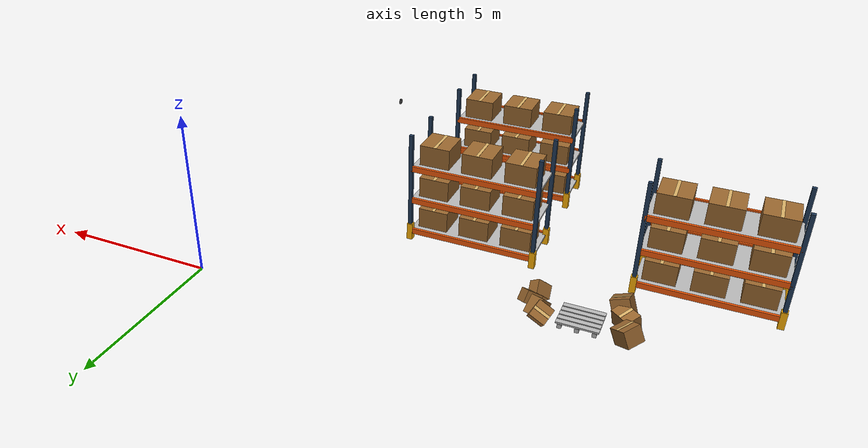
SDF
<sdf version="1.9">
 <world name="factory">
  <model name="rack_-1_0_0">
   <static>true</static>
   <pose>-7 -9 0 0 0 0</pose>
   <link name="body">
    <visual name="post0_visual">
     <pose>-2 -0.75 1.8 0 0 0</pose>
     <geometry><box><size>0.12 0.12 3.6</size></box></geometry>
     <material><ambient>.12 .22 .34 1</ambient><diffuse>.12 .22 .34 1</diffuse></material>
    </visual>
    <collision name="post0_collision">
     <pose>-2 -0.75 1.8 0 0 0</pose>
     <geometry><box><size>0.12 0.12 3.6</size></box></geometry>
    </collision>
    <visual name="guard0_visual">
     <pose>-2 -0.75 0.275 0 0 0</pose>
     <geometry><box><size>0.18 0.18 0.55</size></box></geometry>
     <material><ambient>1 .7 .02 1</ambient><diffuse>1 .7 .02 1</diffuse></material>
    </visual>
    <collision name="guard0_collision">
     <pose>-2 -0.75 0.275 0 0 0</pose>
     <geometry><box><size>0.18 0.18 0.55</size></box></geometry>
    </collision>
    <visual name="post1_visual">
     <pose>2 -0.75 1.8 0 0 0</pose>
     <geometry><box><size>0.12 0.12 3.6</size></box></geometry>
     <material><ambient>.12 .22 .34 1</ambient><diffuse>.12 .22 .34 1</diffuse></material>
    </visual>
    <collision name="post1_collision">
     <pose>2 -0.75 1.8 0 0 0</pose>
     <geometry><box><size>0.12 0.12 3.6</size></box></geometry>
    </collision>
    <visual name="guard1_visual">
     <pose>2 -0.75 0.275 0 0 0</pose>
     <geometry><box><size>0.18 0.18 0.55</size></box></geometry>
     <material><ambient>1 .7 .02 1</ambient><diffuse>1 .7 .02 1</diffuse></material>
    </visual>
    <collision name="guard1_collision">
     <pose>2 -0.75 0.275 0 0 0</pose>
     <geometry><box><size>0.18 0.18 0.55</size></box></geometry>
    </collision>
    <visual name="post2_visual">
     <pose>-2 0.75 1.8 0 0 0</pose>
     <geometry><box><size>0.12 0.12 3.6</size></box></geometry>
     <material><ambient>.12 .22 .34 1</ambient><diffuse>.12 .22 .34 1</diffuse></material>
    </visual>
    <collision name="post2_collision">
     <pose>-2 0.75 1.8 0 0 0</pose>
     <geometry><box><size>0.12 0.12 3.6</size></box></geometry>
    </collision>
    <visual name="guard2_visual">
     <pose>-2 0.75 0.275 0 0 0</pose>
     <geometry><box><size>0.18 0.18 0.55</size></box></geometry>
     <material><ambient>1 .7 .02 1</ambient><diffuse>1 .7 .02 1</diffuse></material>
    </visual>
    <collision name="guard2_collision">
     <pose>-2 0.75 0.275 0 0 0</pose>
     <geometry><box><size>0.18 0.18 0.55</size></box></geometry>
    </collision>
    <visual name="post3_visual">
     <pose>2 0.75 1.8 0 0 0</pose>
     <geometry><box><size>0.12 0.12 3.6</size></box></geometry>
     <material><ambient>.12 .22 .34 1</ambient><diffuse>.12 .22 .34 1</diffuse></material>
    </visual>
    <collision name="post3_collision">
     <pose>2 0.75 1.8 0 0 0</pose>
     <geometry><box><size>0.12 0.12 3.6</size></box></geometry>
    </collision>
    <visual name="guard3_visual">
     <pose>2 0.75 0.275 0 0 0</pose>
     <geometry><box><size>0.18 0.18 0.55</size></box></geometry>
     <material><ambient>1 .7 .02 1</ambient><diffuse>1 .7 .02 1</diffuse></material>
    </visual>
    <collision name="guard3_collision">
     <pose>2 0.75 0.275 0 0 0</pose>
     <geometry><box><size>0.18 0.18 0.55</size></box></geometry>
    </collision>
    <visual name="shelf0_visual">
     <pose>0 0 0.3 0 0 0</pose>
     <geometry><mesh><uri>model://factory_scene_assets/meshes/wood_010.dae</uri></mesh></geometry>
    </visual>
    <collision name="shelf0_collision">
     <pose>0 0 0.3 0 0 0</pose>
     <geometry><box><size>4 1.5 0.08</size></box></geometry>
    </collision>
    <visual name="beam0_0_visual">
     <pose>0 -0.77 0.3 0 0 0</pose>
     <geometry><box><size>4 0.08 0.18</size></box></geometry>
     <material><ambient>.95 .35 .035 1</ambient><diffuse>.95 .35 .035 1</diffuse></material>
    </visual>
    <collision name="beam0_0_collision">
     <pose>0 -0.77 0.3 0 0 0</pose>
     <geometry><box><size>4 0.08 0.18</size></box></geometry>
    </collision>
    <visual name="beam0_1_visual">
     <pose>0 0.77 0.3 0 0 0</pose>
     <geometry><box><size>4 0.08 0.18</size></box></geometry>
     <material><ambient>.95 .35 .035 1</ambient><diffuse>.95 .35 .035 1</diffuse></material>
    </visual>
    <collision name="beam0_1_collision">
     <pose>0 0.77 0.3 0 0 0</pose>
     <geometry><box><size>4 0.08 0.18</size></box></geometry>
    </collision>
    <visual name="cargo0_0_visual">
     <pose>-1.35 0 0.665 0 0 0</pose>
     <geometry><box><size>0.95 1 0.65</size></box></geometry>
     <material><ambient>.60 .40 .18 1</ambient><diffuse>.60 .40 .18 1</diffuse></material>
    </visual>
    <collision name="cargo0_0_collision">
     <pose>-1.35 0 0.665 0 0 0</pose>
     <geometry><box><size>0.95 1 0.65</size></box></geometry>
    </collision>
    <visual name="cargo0_0_tape_visual">
     <pose>-1.35 0 0.993 0 0 0</pose>
     <geometry><box><size>0.09 1 0.006</size></box></geometry>
     <material><ambient>.85 .69 .4 1</ambient><diffuse>.85 .69 .4 1</diffuse></material>
    </visual>
    <visual name="cargo0_1_visual">
     <pose>0 0 0.665 0 0 0</pose>
     <geometry><box><size>0.95 1 0.65</size></box></geometry>
     <material><ambient>.60 .40 .18 1</ambient><diffuse>.60 .40 .18 1</diffuse></material>
    </visual>
    <collision name="cargo0_1_collision">
     <pose>0 0 0.665 0 0 0</pose>
     <geometry><box><size>0.95 1 0.65</size></box></geometry>
    </collision>
    <visual name="cargo0_1_tape_visual">
     <pose>0 0 0.993 0 0 0</pose>
     <geometry><box><size>0.09 1 0.006</size></box></geometry>
     <material><ambient>.85 .69 .4 1</ambient><diffuse>.85 .69 .4 1</diffuse></material>
    </visual>
    <visual name="cargo0_2_visual">
     <pose>1.35 0 0.665 0 0 0</pose>
     <geometry><box><size>0.95 1 0.65</size></box></geometry>
     <material><ambient>.60 .40 .18 1</ambient><diffuse>.60 .40 .18 1</diffuse></material>
    </visual>
    <collision name="cargo0_2_collision">
     <pose>1.35 0 0.665 0 0 0</pose>
     <geometry><box><size>0.95 1 0.65</size></box></geometry>
    </collision>
    <visual name="cargo0_2_tape_visual">
     <pose>1.35 0 0.993 0 0 0</pose>
     <geometry><box><size>0.09 1 0.006</size></box></geometry>
     <material><ambient>.85 .69 .4 1</ambient><diffuse>.85 .69 .4 1</diffuse></material>
    </visual>
    <visual name="shelf1_visual">
     <pose>0 0 1.4 0 0 0</pose>
     <geometry><mesh><uri>model://factory_scene_assets/meshes/wood_010.dae</uri></mesh></geometry>
    </visual>
    <collision name="shelf1_collision">
     <pose>0 0 1.4 0 0 0</pose>
     <geometry><box><size>4 1.5 0.08</size></box></geometry>
    </collision>
    <visual name="beam1_0_visual">
     <pose>0 -0.77 1.4 0 0 0</pose>
     <geometry><box><size>4 0.08 0.18</size></box></geometry>
     <material><ambient>.95 .35 .035 1</ambient><diffuse>.95 .35 .035 1</diffuse></material>
    </visual>
    <collision name="beam1_0_collision">
     <pose>0 -0.77 1.4 0 0 0</pose>
     <geometry><box><size>4 0.08 0.18</size></box></geometry>
    </collision>
    <visual name="beam1_1_visual">
     <pose>0 0.77 1.4 0 0 0</pose>
     <geometry><box><size>4 0.08 0.18</size></box></geometry>
     <material><ambient>.95 .35 .035 1</ambient><diffuse>.95 .35 .035 1</diffuse></material>
    </visual>
    <collision name="beam1_1_collision">
     <pose>0 0.77 1.4 0 0 0</pose>
     <geometry><box><size>4 0.08 0.18</size></box></geometry>
    </collision>
    <visual name="cargo1_0_visual">
     <pose>-1.35 0 1.765 0 0 0</pose>
     <geometry><box><size>0.95 1 0.65</size></box></geometry>
     <material><ambient>.60 .40 .18 1</ambient><diffuse>.60 .40 .18 1</diffuse></material>
    </visual>
    <collision name="cargo1_0_collision">
     <pose>-1.35 0 1.765 0 0 0</pose>
     <geometry><box><size>0.95 1 0.65</size></box></geometry>
    </collision>
    <visual name="cargo1_0_tape_visual">
     <pose>-1.35 0 2.093 0 0 0</pose>
     <geometry><box><size>0.09 1 0.006</size></box></geometry>
     <material><ambient>.85 .69 .4 1</ambient><diffuse>.85 .69 .4 1</diffuse></material>
    </visual>
    <visual name="cargo1_1_visual">
     <pose>0 0 1.765 0 0 0</pose>
     <geometry><box><size>0.95 1 0.65</size></box></geometry>
     <material><ambient>.60 .40 .18 1</ambient><diffuse>.60 .40 .18 1</diffuse></material>
    </visual>
    <collision name="cargo1_1_collision">
     <pose>0 0 1.765 0 0 0</pose>
     <geometry><box><size>0.95 1 0.65</size></box></geometry>
    </collision>
    <visual name="cargo1_1_tape_visual">
     <pose>0 0 2.093 0 0 0</pose>
     <geometry><box><size>0.09 1 0.006</size></box></geometry>
     <material><ambient>.85 .69 .4 1</ambient><diffuse>.85 .69 .4 1</diffuse></material>
    </visual>
    <visual name="cargo1_2_visual">
     <pose>1.35 0 1.765 0 0 0</pose>
     <geometry><box><size>0.95 1 0.65</size></box></geometry>
     <material><ambient>.60 .40 .18 1</ambient><diffuse>.60 .40 .18 1</diffuse></material>
    </visual>
    <collision name="cargo1_2_collision">
     <pose>1.35 0 1.765 0 0 0</pose>
     <geometry><box><size>0.95 1 0.65</size></box></geometry>
    </collision>
    <visual name="cargo1_2_tape_visual">
     <pose>1.35 0 2.093 0 0 0</pose>
     <geometry><box><size>0.09 1 0.006</size></box></geometry>
     <material><ambient>.85 .69 .4 1</ambient><diffuse>.85 .69 .4 1</diffuse></material>
    </visual>
    <visual name="shelf2_visual">
     <pose>0 0 2.5 0 0 0</pose>
     <geometry><mesh><uri>model://factory_scene_assets/meshes/wood_010.dae</uri></mesh></geometry>
    </visual>
    <collision name="shelf2_collision">
     <pose>0 0 2.5 0 0 0</pose>
     <geometry><box><size>4 1.5 0.08</size></box></geometry>
    </collision>
    <visual name="beam2_0_visual">
     <pose>0 -0.77 2.5 0 0 0</pose>
     <geometry><box><size>4 0.08 0.18</size></box></geometry>
     <material><ambient>.95 .35 .035 1</ambient><diffuse>.95 .35 .035 1</diffuse></material>
    </visual>
    <collision name="beam2_0_collision">
     <pose>0 -0.77 2.5 0 0 0</pose>
     <geometry><box><size>4 0.08 0.18</size></box></geometry>
    </collision>
    <visual name="beam2_1_visual">
     <pose>0 0.77 2.5 0 0 0</pose>
     <geometry><box><size>4 0.08 0.18</size></box></geometry>
     <material><ambient>.95 .35 .035 1</ambient><diffuse>.95 .35 .035 1</diffuse></material>
    </visual>
    <collision name="beam2_1_collision">
     <pose>0 0.77 2.5 0 0 0</pose>
     <geometry><box><size>4 0.08 0.18</size></box></geometry>
    </collision>
    <visual name="cargo2_0_visual">
     <pose>-1.35 0 2.865 0 0 0</pose>
     <geometry><box><size>0.95 1 0.65</size></box></geometry>
     <material><ambient>.60 .40 .18 1</ambient><diffuse>.60 .40 .18 1</diffuse></material>
    </visual>
    <collision name="cargo2_0_collision">
     <pose>-1.35 0 2.865 0 0 0</pose>
     <geometry><box><size>0.95 1 0.65</size></box></geometry>
    </collision>
    <visual name="cargo2_0_tape_visual">
     <pose>-1.35 0 3.193 0 0 0</pose>
     <geometry><box><size>0.09 1 0.006</size></box></geometry>
     <material><ambient>.85 .69 .4 1</ambient><diffuse>.85 .69 .4 1</diffuse></material>
    </visual>
    <visual name="cargo2_1_visual">
     <pose>0 0 2.865 0 0 0</pose>
     <geometry><box><size>0.95 1 0.65</size></box></geometry>
     <material><ambient>.60 .40 .18 1</ambient><diffuse>.60 .40 .18 1</diffuse></material>
    </visual>
    <collision name="cargo2_1_collision">
     <pose>0 0 2.865 0 0 0</pose>
     <geometry><box><size>0.95 1 0.65</size></box></geometry>
    </collision>
    <visual name="cargo2_1_tape_visual">
     <pose>0 0 3.193 0 0 0</pose>
     <geometry><box><size>0.09 1 0.006</size></box></geometry>
     <material><ambient>.85 .69 .4 1</ambient><diffuse>.85 .69 .4 1</diffuse></material>
    </visual>
    <visual name="cargo2_2_visual">
     <pose>1.35 0 2.865 0 0 0</pose>
     <geometry><box><size>0.95 1 0.65</size></box></geometry>
     <material><ambient>.60 .40 .18 1</ambient><diffuse>.60 .40 .18 1</diffuse></material>
    </visual>
    <collision name="cargo2_2_collision">
     <pose>1.35 0 2.865 0 0 0</pose>
     <geometry><box><size>0.95 1 0.65</size></box></geometry>
    </collision>
    <visual name="cargo2_2_tape_visual">
     <pose>1.35 0 3.193 0 0 0</pose>
     <geometry><box><size>0.09 1 0.006</size></box></geometry>
     <material><ambient>.85 .69 .4 1</ambient><diffuse>.85 .69 .4 1</diffuse></material>
    </visual>
   </link>
  </model>
  <model name="rack_-1_0_1">
   <static>true</static>
   <pose>-7 -5 0 0 0 0</pose>
   <link name="body">
    <visual name="post0_visual">
     <pose>-2 -0.75 1.8 0 0 0</pose>
     <geometry><box><size>0.12 0.12 3.6</size></box></geometry>
     <material><ambient>.12 .22 .34 1</ambient><diffuse>.12 .22 .34 1</diffuse></material>
    </visual>
    <collision name="post0_collision">
     <pose>-2 -0.75 1.8 0 0 0</pose>
     <geometry><box><size>0.12 0.12 3.6</size></box></geometry>
    </collision>
    <visual name="guard0_visual">
     <pose>-2 -0.75 0.275 0 0 0</pose>
     <geometry><box><size>0.18 0.18 0.55</size></box></geometry>
     <material><ambient>1 .7 .02 1</ambient><diffuse>1 .7 .02 1</diffuse></material>
    </visual>
    <collision name="guard0_collision">
     <pose>-2 -0.75 0.275 0 0 0</pose>
     <geometry><box><size>0.18 0.18 0.55</size></box></geometry>
    </collision>
    <visual name="post1_visual">
     <pose>2 -0.75 1.8 0 0 0</pose>
     <geometry><box><size>0.12 0.12 3.6</size></box></geometry>
     <material><ambient>.12 .22 .34 1</ambient><diffuse>.12 .22 .34 1</diffuse></material>
    </visual>
    <collision name="post1_collision">
     <pose>2 -0.75 1.8 0 0 0</pose>
     <geometry><box><size>0.12 0.12 3.6</size></box></geometry>
    </collision>
    <visual name="guard1_visual">
     <pose>2 -0.75 0.275 0 0 0</pose>
     <geometry><box><size>0.18 0.18 0.55</size></box></geometry>
     <material><ambient>1 .7 .02 1</ambient><diffuse>1 .7 .02 1</diffuse></material>
    </visual>
    <collision name="guard1_collision">
     <pose>2 -0.75 0.275 0 0 0</pose>
     <geometry><box><size>0.18 0.18 0.55</size></box></geometry>
    </collision>
    <visual name="post2_visual">
     <pose>-2 0.75 1.8 0 0 0</pose>
     <geometry><box><size>0.12 0.12 3.6</size></box></geometry>
     <material><ambient>.12 .22 .34 1</ambient><diffuse>.12 .22 .34 1</diffuse></material>
    </visual>
    <collision name="post2_collision">
     <pose>-2 0.75 1.8 0 0 0</pose>
     <geometry><box><size>0.12 0.12 3.6</size></box></geometry>
    </collision>
    <visual name="guard2_visual">
     <pose>-2 0.75 0.275 0 0 0</pose>
     <geometry><box><size>0.18 0.18 0.55</size></box></geometry>
     <material><ambient>1 .7 .02 1</ambient><diffuse>1 .7 .02 1</diffuse></material>
    </visual>
    <collision name="guard2_collision">
     <pose>-2 0.75 0.275 0 0 0</pose>
     <geometry><box><size>0.18 0.18 0.55</size></box></geometry>
    </collision>
    <visual name="post3_visual">
     <pose>2 0.75 1.8 0 0 0</pose>
     <geometry><box><size>0.12 0.12 3.6</size></box></geometry>
     <material><ambient>.12 .22 .34 1</ambient><diffuse>.12 .22 .34 1</diffuse></material>
    </visual>
    <collision name="post3_collision">
     <pose>2 0.75 1.8 0 0 0</pose>
     <geometry><box><size>0.12 0.12 3.6</size></box></geometry>
    </collision>
    <visual name="guard3_visual">
     <pose>2 0.75 0.275 0 0 0</pose>
     <geometry><box><size>0.18 0.18 0.55</size></box></geometry>
     <material><ambient>1 .7 .02 1</ambient><diffuse>1 .7 .02 1</diffuse></material>
    </visual>
    <collision name="guard3_collision">
     <pose>2 0.75 0.275 0 0 0</pose>
     <geometry><box><size>0.18 0.18 0.55</size></box></geometry>
    </collision>
    <visual name="shelf0_visual">
     <pose>0 0 0.3 0 0 0</pose>
     <geometry><mesh><uri>model://factory_scene_assets/meshes/wood_010.dae</uri></mesh></geometry>
    </visual>
    <collision name="shelf0_collision">
     <pose>0 0 0.3 0 0 0</pose>
     <geometry><box><size>4 1.5 0.08</size></box></geometry>
    </collision>
    <visual name="beam0_0_visual">
     <pose>0 -0.77 0.3 0 0 0</pose>
     <geometry><box><size>4 0.08 0.18</size></box></geometry>
     <material><ambient>.95 .35 .035 1</ambient><diffuse>.95 .35 .035 1</diffuse></material>
    </visual>
    <collision name="beam0_0_collision">
     <pose>0 -0.77 0.3 0 0 0</pose>
     <geometry><box><size>4 0.08 0.18</size></box></geometry>
    </collision>
    <visual name="beam0_1_visual">
     <pose>0 0.77 0.3 0 0 0</pose>
     <geometry><box><size>4 0.08 0.18</size></box></geometry>
     <material><ambient>.95 .35 .035 1</ambient><diffuse>.95 .35 .035 1</diffuse></material>
    </visual>
    <collision name="beam0_1_collision">
     <pose>0 0.77 0.3 0 0 0</pose>
     <geometry><box><size>4 0.08 0.18</size></box></geometry>
    </collision>
    <visual name="cargo0_0_visual">
     <pose>-1.35 0 0.665 0 0 0</pose>
     <geometry><box><size>0.95 1 0.65</size></box></geometry>
     <material><ambient>.60 .40 .18 1</ambient><diffuse>.60 .40 .18 1</diffuse></material>
    </visual>
    <collision name="cargo0_0_collision">
     <pose>-1.35 0 0.665 0 0 0</pose>
     <geometry><box><size>0.95 1 0.65</size></box></geometry>
    </collision>
    <visual name="cargo0_0_tape_visual">
     <pose>-1.35 0 0.993 0 0 0</pose>
     <geometry><box><size>0.09 1 0.006</size></box></geometry>
     <material><ambient>.85 .69 .4 1</ambient><diffuse>.85 .69 .4 1</diffuse></material>
    </visual>
    <visual name="cargo0_1_visual">
     <pose>0 0 0.665 0 0 0</pose>
     <geometry><box><size>0.95 1 0.65</size></box></geometry>
     <material><ambient>.60 .40 .18 1</ambient><diffuse>.60 .40 .18 1</diffuse></material>
    </visual>
    <collision name="cargo0_1_collision">
     <pose>0 0 0.665 0 0 0</pose>
     <geometry><box><size>0.95 1 0.65</size></box></geometry>
    </collision>
    <visual name="cargo0_1_tape_visual">
     <pose>0 0 0.993 0 0 0</pose>
     <geometry><box><size>0.09 1 0.006</size></box></geometry>
     <material><ambient>.85 .69 .4 1</ambient><diffuse>.85 .69 .4 1</diffuse></material>
    </visual>
    <visual name="cargo0_2_visual">
     <pose>1.35 0 0.665 0 0 0</pose>
     <geometry><box><size>0.95 1 0.65</size></box></geometry>
     <material><ambient>.60 .40 .18 1</ambient><diffuse>.60 .40 .18 1</diffuse></material>
    </visual>
    <collision name="cargo0_2_collision">
     <pose>1.35 0 0.665 0 0 0</pose>
     <geometry><box><size>0.95 1 0.65</size></box></geometry>
    </collision>
    <visual name="cargo0_2_tape_visual">
     <pose>1.35 0 0.993 0 0 0</pose>
     <geometry><box><size>0.09 1 0.006</size></box></geometry>
     <material><ambient>.85 .69 .4 1</ambient><diffuse>.85 .69 .4 1</diffuse></material>
    </visual>
    <visual name="shelf1_visual">
     <pose>0 0 1.4 0 0 0</pose>
     <geometry><mesh><uri>model://factory_scene_assets/meshes/wood_010.dae</uri></mesh></geometry>
    </visual>
    <collision name="shelf1_collision">
     <pose>0 0 1.4 0 0 0</pose>
     <geometry><box><size>4 1.5 0.08</size></box></geometry>
    </collision>
    <visual name="beam1_0_visual">
     <pose>0 -0.77 1.4 0 0 0</pose>
     <geometry><box><size>4 0.08 0.18</size></box></geometry>
     <material><ambient>.95 .35 .035 1</ambient><diffuse>.95 .35 .035 1</diffuse></material>
    </visual>
    <collision name="beam1_0_collision">
     <pose>0 -0.77 1.4 0 0 0</pose>
     <geometry><box><size>4 0.08 0.18</size></box></geometry>
    </collision>
    <visual name="beam1_1_visual">
     <pose>0 0.77 1.4 0 0 0</pose>
     <geometry><box><size>4 0.08 0.18</size></box></geometry>
     <material><ambient>.95 .35 .035 1</ambient><diffuse>.95 .35 .035 1</diffuse></material>
    </visual>
    <collision name="beam1_1_collision">
     <pose>0 0.77 1.4 0 0 0</pose>
     <geometry><box><size>4 0.08 0.18</size></box></geometry>
    </collision>
    <visual name="cargo1_0_visual">
     <pose>-1.35 0 1.765 0 0 0</pose>
     <geometry><box><size>0.95 1 0.65</size></box></geometry>
     <material><ambient>.60 .40 .18 1</ambient><diffuse>.60 .40 .18 1</diffuse></material>
    </visual>
    <collision name="cargo1_0_collision">
     <pose>-1.35 0 1.765 0 0 0</pose>
     <geometry><box><size>0.95 1 0.65</size></box></geometry>
    </collision>
    <visual name="cargo1_0_tape_visual">
     <pose>-1.35 0 2.093 0 0 0</pose>
     <geometry><box><size>0.09 1 0.006</size></box></geometry>
     <material><ambient>.85 .69 .4 1</ambient><diffuse>.85 .69 .4 1</diffuse></material>
    </visual>
    <visual name="cargo1_1_visual">
     <pose>0 0 1.765 0 0 0</pose>
     <geometry><box><size>0.95 1 0.65</size></box></geometry>
     <material><ambient>.60 .40 .18 1</ambient><diffuse>.60 .40 .18 1</diffuse></material>
    </visual>
    <collision name="cargo1_1_collision">
     <pose>0 0 1.765 0 0 0</pose>
     <geometry><box><size>0.95 1 0.65</size></box></geometry>
    </collision>
    <visual name="cargo1_1_tape_visual">
     <pose>0 0 2.093 0 0 0</pose>
     <geometry><box><size>0.09 1 0.006</size></box></geometry>
     <material><ambient>.85 .69 .4 1</ambient><diffuse>.85 .69 .4 1</diffuse></material>
    </visual>
    <visual name="cargo1_2_visual">
     <pose>1.35 0 1.765 0 0 0</pose>
     <geometry><box><size>0.95 1 0.65</size></box></geometry>
     <material><ambient>.60 .40 .18 1</ambient><diffuse>.60 .40 .18 1</diffuse></material>
    </visual>
    <collision name="cargo1_2_collision">
     <pose>1.35 0 1.765 0 0 0</pose>
     <geometry><box><size>0.95 1 0.65</size></box></geometry>
    </collision>
    <visual name="cargo1_2_tape_visual">
     <pose>1.35 0 2.093 0 0 0</pose>
     <geometry><box><size>0.09 1 0.006</size></box></geometry>
     <material><ambient>.85 .69 .4 1</ambient><diffuse>.85 .69 .4 1</diffuse></material>
    </visual>
    <visual name="shelf2_visual">
     <pose>0 0 2.5 0 0 0</pose>
     <geometry><mesh><uri>model://factory_scene_assets/meshes/wood_010.dae</uri></mesh></geometry>
    </visual>
    <collision name="shelf2_collision">
     <pose>0 0 2.5 0 0 0</pose>
     <geometry><box><size>4 1.5 0.08</size></box></geometry>
    </collision>
    <visual name="beam2_0_visual">
     <pose>0 -0.77 2.5 0 0 0</pose>
     <geometry><box><size>4 0.08 0.18</size></box></geometry>
     <material><ambient>.95 .35 .035 1</ambient><diffuse>.95 .35 .035 1</diffuse></material>
    </visual>
    <collision name="beam2_0_collision">
     <pose>0 -0.77 2.5 0 0 0</pose>
     <geometry><box><size>4 0.08 0.18</size></box></geometry>
    </collision>
    <visual name="beam2_1_visual">
     <pose>0 0.77 2.5 0 0 0</pose>
     <geometry><box><size>4 0.08 0.18</size></box></geometry>
     <material><ambient>.95 .35 .035 1</ambient><diffuse>.95 .35 .035 1</diffuse></material>
    </visual>
    <collision name="beam2_1_collision">
     <pose>0 0.77 2.5 0 0 0</pose>
     <geometry><box><size>4 0.08 0.18</size></box></geometry>
    </collision>
    <visual name="cargo2_0_visual">
     <pose>-1.35 0 2.865 0 0 0</pose>
     <geometry><box><size>0.95 1 0.65</size></box></geometry>
     <material><ambient>.60 .40 .18 1</ambient><diffuse>.60 .40 .18 1</diffuse></material>
    </visual>
    <collision name="cargo2_0_collision">
     <pose>-1.35 0 2.865 0 0 0</pose>
     <geometry><box><size>0.95 1 0.65</size></box></geometry>
    </collision>
    <visual name="cargo2_0_tape_visual">
     <pose>-1.35 0 3.193 0 0 0</pose>
     <geometry><box><size>0.09 1 0.006</size></box></geometry>
     <material><ambient>.85 .69 .4 1</ambient><diffuse>.85 .69 .4 1</diffuse></material>
    </visual>
    <visual name="cargo2_1_visual">
     <pose>0 0 2.865 0 0 0</pose>
     <geometry><box><size>0.95 1 0.65</size></box></geometry>
     <material><ambient>.60 .40 .18 1</ambient><diffuse>.60 .40 .18 1</diffuse></material>
    </visual>
    <collision name="cargo2_1_collision">
     <pose>0 0 2.865 0 0 0</pose>
     <geometry><box><size>0.95 1 0.65</size></box></geometry>
    </collision>
    <visual name="cargo2_1_tape_visual">
     <pose>0 0 3.193 0 0 0</pose>
     <geometry><box><size>0.09 1 0.006</size></box></geometry>
     <material><ambient>.85 .69 .4 1</ambient><diffuse>.85 .69 .4 1</diffuse></material>
    </visual>
    <visual name="cargo2_2_visual">
     <pose>1.35 0 2.865 0 0 0</pose>
     <geometry><box><size>0.95 1 0.65</size></box></geometry>
     <material><ambient>.60 .40 .18 1</ambient><diffuse>.60 .40 .18 1</diffuse></material>
    </visual>
    <collision name="cargo2_2_collision">
     <pose>1.35 0 2.865 0 0 0</pose>
     <geometry><box><size>0.95 1 0.65</size></box></geometry>
    </collision>
    <visual name="cargo2_2_tape_visual">
     <pose>1.35 0 3.193 0 0 0</pose>
     <geometry><box><size>0.09 1 0.006</size></box></geometry>
     <material><ambient>.85 .69 .4 1</ambient><diffuse>.85 .69 .4 1</diffuse></material>
    </visual>
   </link>
  </model>
  <model name="rack_-1_1_1">
   <static>true</static>
   <pose>-14 -5 0 0 0 0</pose>
   <link name="body">
    <visual name="post0_visual">
     <pose>-2 -0.75 1.8 0 0 0</pose>
     <geometry><box><size>0.12 0.12 3.6</size></box></geometry>
     <material><ambient>.12 .22 .34 1</ambient><diffuse>.12 .22 .34 1</diffuse></material>
    </visual>
    <collision name="post0_collision">
     <pose>-2 -0.75 1.8 0 0 0</pose>
     <geometry><box><size>0.12 0.12 3.6</size></box></geometry>
    </collision>
    <visual name="guard0_visual">
     <pose>-2 -0.75 0.275 0 0 0</pose>
     <geometry><box><size>0.18 0.18 0.55</size></box></geometry>
     <material><ambient>1 .7 .02 1</ambient><diffuse>1 .7 .02 1</diffuse></material>
    </visual>
    <collision name="guard0_collision">
     <pose>-2 -0.75 0.275 0 0 0</pose>
     <geometry><box><size>0.18 0.18 0.55</size></box></geometry>
    </collision>
    <visual name="post1_visual">
     <pose>2 -0.75 1.8 0 0 0</pose>
     <geometry><box><size>0.12 0.12 3.6</size></box></geometry>
     <material><ambient>.12 .22 .34 1</ambient><diffuse>.12 .22 .34 1</diffuse></material>
    </visual>
    <collision name="post1_collision">
     <pose>2 -0.75 1.8 0 0 0</pose>
     <geometry><box><size>0.12 0.12 3.6</size></box></geometry>
    </collision>
    <visual name="guard1_visual">
     <pose>2 -0.75 0.275 0 0 0</pose>
     <geometry><box><size>0.18 0.18 0.55</size></box></geometry>
     <material><ambient>1 .7 .02 1</ambient><diffuse>1 .7 .02 1</diffuse></material>
    </visual>
    <collision name="guard1_collision">
     <pose>2 -0.75 0.275 0 0 0</pose>
     <geometry><box><size>0.18 0.18 0.55</size></box></geometry>
    </collision>
    <visual name="post2_visual">
     <pose>-2 0.75 1.8 0 0 0</pose>
     <geometry><box><size>0.12 0.12 3.6</size></box></geometry>
     <material><ambient>.12 .22 .34 1</ambient><diffuse>.12 .22 .34 1</diffuse></material>
    </visual>
    <collision name="post2_collision">
     <pose>-2 0.75 1.8 0 0 0</pose>
     <geometry><box><size>0.12 0.12 3.6</size></box></geometry>
    </collision>
    <visual name="guard2_visual">
     <pose>-2 0.75 0.275 0 0 0</pose>
     <geometry><box><size>0.18 0.18 0.55</size></box></geometry>
     <material><ambient>1 .7 .02 1</ambient><diffuse>1 .7 .02 1</diffuse></material>
    </visual>
    <collision name="guard2_collision">
     <pose>-2 0.75 0.275 0 0 0</pose>
     <geometry><box><size>0.18 0.18 0.55</size></box></geometry>
    </collision>
    <visual name="post3_visual">
     <pose>2 0.75 1.8 0 0 0</pose>
     <geometry><box><size>0.12 0.12 3.6</size></box></geometry>
     <material><ambient>.12 .22 .34 1</ambient><diffuse>.12 .22 .34 1</diffuse></material>
    </visual>
    <collision name="post3_collision">
     <pose>2 0.75 1.8 0 0 0</pose>
     <geometry><box><size>0.12 0.12 3.6</size></box></geometry>
    </collision>
    <visual name="guard3_visual">
     <pose>2 0.75 0.275 0 0 0</pose>
     <geometry><box><size>0.18 0.18 0.55</size></box></geometry>
     <material><ambient>1 .7 .02 1</ambient><diffuse>1 .7 .02 1</diffuse></material>
    </visual>
    <collision name="guard3_collision">
     <pose>2 0.75 0.275 0 0 0</pose>
     <geometry><box><size>0.18 0.18 0.55</size></box></geometry>
    </collision>
    <visual name="shelf0_visual">
     <pose>0 0 0.3 0 0 0</pose>
     <geometry><mesh><uri>model://factory_scene_assets/meshes/wood_010.dae</uri></mesh></geometry>
    </visual>
    <collision name="shelf0_collision">
     <pose>0 0 0.3 0 0 0</pose>
     <geometry><box><size>4 1.5 0.08</size></box></geometry>
    </collision>
    <visual name="beam0_0_visual">
     <pose>0 -0.77 0.3 0 0 0</pose>
     <geometry><box><size>4 0.08 0.18</size></box></geometry>
     <material><ambient>.95 .35 .035 1</ambient><diffuse>.95 .35 .035 1</diffuse></material>
    </visual>
    <collision name="beam0_0_collision">
     <pose>0 -0.77 0.3 0 0 0</pose>
     <geometry><box><size>4 0.08 0.18</size></box></geometry>
    </collision>
    <visual name="beam0_1_visual">
     <pose>0 0.77 0.3 0 0 0</pose>
     <geometry><box><size>4 0.08 0.18</size></box></geometry>
     <material><ambient>.95 .35 .035 1</ambient><diffuse>.95 .35 .035 1</diffuse></material>
    </visual>
    <collision name="beam0_1_collision">
     <pose>0 0.77 0.3 0 0 0</pose>
     <geometry><box><size>4 0.08 0.18</size></box></geometry>
    </collision>
    <visual name="cargo0_0_visual">
     <pose>-1.35 0 0.665 0 0 0</pose>
     <geometry><box><size>0.95 1 0.65</size></box></geometry>
     <material><ambient>.60 .40 .18 1</ambient><diffuse>.60 .40 .18 1</diffuse></material>
    </visual>
    <collision name="cargo0_0_collision">
     <pose>-1.35 0 0.665 0 0 0</pose>
     <geometry><box><size>0.95 1 0.65</size></box></geometry>
    </collision>
    <visual name="cargo0_0_tape_visual">
     <pose>-1.35 0 0.993 0 0 0</pose>
     <geometry><box><size>0.09 1 0.006</size></box></geometry>
     <material><ambient>.85 .69 .4 1</ambient><diffuse>.85 .69 .4 1</diffuse></material>
    </visual>
    <visual name="cargo0_1_visual">
     <pose>0 0 0.665 0 0 0</pose>
     <geometry><box><size>0.95 1 0.65</size></box></geometry>
     <material><ambient>.60 .40 .18 1</ambient><diffuse>.60 .40 .18 1</diffuse></material>
    </visual>
    <collision name="cargo0_1_collision">
     <pose>0 0 0.665 0 0 0</pose>
     <geometry><box><size>0.95 1 0.65</size></box></geometry>
    </collision>
    <visual name="cargo0_1_tape_visual">
     <pose>0 0 0.993 0 0 0</pose>
     <geometry><box><size>0.09 1 0.006</size></box></geometry>
     <material><ambient>.85 .69 .4 1</ambient><diffuse>.85 .69 .4 1</diffuse></material>
    </visual>
    <visual name="cargo0_2_visual">
     <pose>1.35 0 0.665 0 0 0</pose>
     <geometry><box><size>0.95 1 0.65</size></box></geometry>
     <material><ambient>.60 .40 .18 1</ambient><diffuse>.60 .40 .18 1</diffuse></material>
    </visual>
    <collision name="cargo0_2_collision">
     <pose>1.35 0 0.665 0 0 0</pose>
     <geometry><box><size>0.95 1 0.65</size></box></geometry>
    </collision>
    <visual name="cargo0_2_tape_visual">
     <pose>1.35 0 0.993 0 0 0</pose>
     <geometry><box><size>0.09 1 0.006</size></box></geometry>
     <material><ambient>.85 .69 .4 1</ambient><diffuse>.85 .69 .4 1</diffuse></material>
    </visual>
    <visual name="shelf1_visual">
     <pose>0 0 1.4 0 0 0</pose>
     <geometry><mesh><uri>model://factory_scene_assets/meshes/wood_010.dae</uri></mesh></geometry>
    </visual>
    <collision name="shelf1_collision">
     <pose>0 0 1.4 0 0 0</pose>
     <geometry><box><size>4 1.5 0.08</size></box></geometry>
    </collision>
    <visual name="beam1_0_visual">
     <pose>0 -0.77 1.4 0 0 0</pose>
     <geometry><box><size>4 0.08 0.18</size></box></geometry>
     <material><ambient>.95 .35 .035 1</ambient><diffuse>.95 .35 .035 1</diffuse></material>
    </visual>
    <collision name="beam1_0_collision">
     <pose>0 -0.77 1.4 0 0 0</pose>
     <geometry><box><size>4 0.08 0.18</size></box></geometry>
    </collision>
    <visual name="beam1_1_visual">
     <pose>0 0.77 1.4 0 0 0</pose>
     <geometry><box><size>4 0.08 0.18</size></box></geometry>
     <material><ambient>.95 .35 .035 1</ambient><diffuse>.95 .35 .035 1</diffuse></material>
    </visual>
    <collision name="beam1_1_collision">
     <pose>0 0.77 1.4 0 0 0</pose>
     <geometry><box><size>4 0.08 0.18</size></box></geometry>
    </collision>
    <visual name="cargo1_0_visual">
     <pose>-1.35 0 1.765 0 0 0</pose>
     <geometry><box><size>0.95 1 0.65</size></box></geometry>
     <material><ambient>.60 .40 .18 1</ambient><diffuse>.60 .40 .18 1</diffuse></material>
    </visual>
    <collision name="cargo1_0_collision">
     <pose>-1.35 0 1.765 0 0 0</pose>
     <geometry><box><size>0.95 1 0.65</size></box></geometry>
    </collision>
    <visual name="cargo1_0_tape_visual">
     <pose>-1.35 0 2.093 0 0 0</pose>
     <geometry><box><size>0.09 1 0.006</size></box></geometry>
     <material><ambient>.85 .69 .4 1</ambient><diffuse>.85 .69 .4 1</diffuse></material>
    </visual>
    <visual name="cargo1_1_visual">
     <pose>0 0 1.765 0 0 0</pose>
     <geometry><box><size>0.95 1 0.65</size></box></geometry>
     <material><ambient>.60 .40 .18 1</ambient><diffuse>.60 .40 .18 1</diffuse></material>
    </visual>
    <collision name="cargo1_1_collision">
     <pose>0 0 1.765 0 0 0</pose>
     <geometry><box><size>0.95 1 0.65</size></box></geometry>
    </collision>
    <visual name="cargo1_1_tape_visual">
     <pose>0 0 2.093 0 0 0</pose>
     <geometry><box><size>0.09 1 0.006</size></box></geometry>
     <material><ambient>.85 .69 .4 1</ambient><diffuse>.85 .69 .4 1</diffuse></material>
    </visual>
    <visual name="cargo1_2_visual">
     <pose>1.35 0 1.765 0 0 0</pose>
     <geometry><box><size>0.95 1 0.65</size></box></geometry>
     <material><ambient>.60 .40 .18 1</ambient><diffuse>.60 .40 .18 1</diffuse></material>
    </visual>
    <collision name="cargo1_2_collision">
     <pose>1.35 0 1.765 0 0 0</pose>
     <geometry><box><size>0.95 1 0.65</size></box></geometry>
    </collision>
    <visual name="cargo1_2_tape_visual">
     <pose>1.35 0 2.093 0 0 0</pose>
     <geometry><box><size>0.09 1 0.006</size></box></geometry>
     <material><ambient>.85 .69 .4 1</ambient><diffuse>.85 .69 .4 1</diffuse></material>
    </visual>
    <visual name="shelf2_visual">
     <pose>0 0 2.5 0 0 0</pose>
     <geometry><mesh><uri>model://factory_scene_assets/meshes/wood_010.dae</uri></mesh></geometry>
    </visual>
    <collision name="shelf2_collision">
     <pose>0 0 2.5 0 0 0</pose>
     <geometry><box><size>4 1.5 0.08</size></box></geometry>
    </collision>
    <visual name="beam2_0_visual">
     <pose>0 -0.77 2.5 0 0 0</pose>
     <geometry><box><size>4 0.08 0.18</size></box></geometry>
     <material><ambient>.95 .35 .035 1</ambient><diffuse>.95 .35 .035 1</diffuse></material>
    </visual>
    <collision name="beam2_0_collision">
     <pose>0 -0.77 2.5 0 0 0</pose>
     <geometry><box><size>4 0.08 0.18</size></box></geometry>
    </collision>
    <visual name="beam2_1_visual">
     <pose>0 0.77 2.5 0 0 0</pose>
     <geometry><box><size>4 0.08 0.18</size></box></geometry>
     <material><ambient>.95 .35 .035 1</ambient><diffuse>.95 .35 .035 1</diffuse></material>
    </visual>
    <collision name="beam2_1_collision">
     <pose>0 0.77 2.5 0 0 0</pose>
     <geometry><box><size>4 0.08 0.18</size></box></geometry>
    </collision>
    <visual name="cargo2_0_visual">
     <pose>-1.35 0 2.865 0 0 0</pose>
     <geometry><box><size>0.95 1 0.65</size></box></geometry>
     <material><ambient>.60 .40 .18 1</ambient><diffuse>.60 .40 .18 1</diffuse></material>
    </visual>
    <collision name="cargo2_0_collision">
     <pose>-1.35 0 2.865 0 0 0</pose>
     <geometry><box><size>0.95 1 0.65</size></box></geometry>
    </collision>
    <visual name="cargo2_0_tape_visual">
     <pose>-1.35 0 3.193 0 0 0</pose>
     <geometry><box><size>0.09 1 0.006</size></box></geometry>
     <material><ambient>.85 .69 .4 1</ambient><diffuse>.85 .69 .4 1</diffuse></material>
    </visual>
    <visual name="cargo2_1_visual">
     <pose>0 0 2.865 0 0 0</pose>
     <geometry><box><size>0.95 1 0.65</size></box></geometry>
     <material><ambient>.60 .40 .18 1</ambient><diffuse>.60 .40 .18 1</diffuse></material>
    </visual>
    <collision name="cargo2_1_collision">
     <pose>0 0 2.865 0 0 0</pose>
     <geometry><box><size>0.95 1 0.65</size></box></geometry>
    </collision>
    <visual name="cargo2_1_tape_visual">
     <pose>0 0 3.193 0 0 0</pose>
     <geometry><box><size>0.09 1 0.006</size></box></geometry>
     <material><ambient>.85 .69 .4 1</ambient><diffuse>.85 .69 .4 1</diffuse></material>
    </visual>
    <visual name="cargo2_2_visual">
     <pose>1.35 0 2.865 0 0 0</pose>
     <geometry><box><size>0.95 1 0.65</size></box></geometry>
     <material><ambient>.60 .40 .18 1</ambient><diffuse>.60 .40 .18 1</diffuse></material>
    </visual>
    <collision name="cargo2_2_collision">
     <pose>1.35 0 2.865 0 0 0</pose>
     <geometry><box><size>0.95 1 0.65</size></box></geometry>
    </collision>
    <visual name="cargo2_2_tape_visual">
     <pose>1.35 0 3.193 0 0 0</pose>
     <geometry><box><size>0.09 1 0.006</size></box></geometry>
     <material><ambient>.85 .69 .4 1</ambient><diffuse>.85 .69 .4 1</diffuse></material>
    </visual>
   </link>
  </model>
  <model name="fallen_pallet_6">
   <static>true</static>
   <pose>-11 -2.2 0 0 0 0</pose>
   <link name="body">
    <visual name="runner0_visual">
     <pose>-0.48 0 0.065 0 0 0</pose>
     <geometry><mesh><uri>model://factory_scene_assets/meshes/wood_011.dae</uri></mesh></geometry>
    </visual>
    <collision name="runner0_collision">
     <pose>-0.48 0 0.065 0 0 0</pose>
     <geometry><box><size>0.12 1 0.13</size></box></geometry>
    </collision>
    <visual name="runner1_visual">
     <pose>0 0 0.065 0 0 0</pose>
     <geometry><mesh><uri>model://factory_scene_assets/meshes/wood_011.dae</uri></mesh></geometry>
    </visual>
    <collision name="runner1_collision">
     <pose>0 0 0.065 0 0 0</pose>
     <geometry><box><size>0.12 1 0.13</size></box></geometry>
    </collision>
    <visual name="runner2_visual">
     <pose>0.48 0 0.065 0 0 0</pose>
     <geometry><mesh><uri>model://factory_scene_assets/meshes/wood_011.dae</uri></mesh></geometry>
    </visual>
    <collision name="runner2_collision">
     <pose>0.48 0 0.065 0 0 0</pose>
     <geometry><box><size>0.12 1 0.13</size></box></geometry>
    </collision>
    <visual name="plank0_visual">
     <pose>0 -0.4 0.155 0 0 0</pose>
     <geometry><mesh><uri>model://factory_scene_assets/meshes/wood_012.dae</uri></mesh></geometry>
    </visual>
    <collision name="plank0_collision">
     <pose>0 -0.4 0.155 0 0 0</pose>
     <geometry><box><size>1.2 0.16 0.05</size></box></geometry>
    </collision>
    <visual name="plank1_visual">
     <pose>0 -0.2 0.155 0 0 0</pose>
     <geometry><mesh><uri>model://factory_scene_assets/meshes/wood_012.dae</uri></mesh></geometry>
    </visual>
    <collision name="plank1_collision">
     <pose>0 -0.2 0.155 0 0 0</pose>
     <geometry><box><size>1.2 0.16 0.05</size></box></geometry>
    </collision>
    <visual name="plank2_visual">
     <pose>0 0 0.155 0 0 0</pose>
     <geometry><mesh><uri>model://factory_scene_assets/meshes/wood_012.dae</uri></mesh></geometry>
    </visual>
    <collision name="plank2_collision">
     <pose>0 0 0.155 0 0 0</pose>
     <geometry><box><size>1.2 0.16 0.05</size></box></geometry>
    </collision>
    <visual name="plank3_visual">
     <pose>0 0.2 0.155 0 0 0</pose>
     <geometry><mesh><uri>model://factory_scene_assets/meshes/wood_012.dae</uri></mesh></geometry>
    </visual>
    <collision name="plank3_collision">
     <pose>0 0.2 0.155 0 0 0</pose>
     <geometry><box><size>1.2 0.16 0.05</size></box></geometry>
    </collision>
    <visual name="plank4_visual">
     <pose>0 0.4 0.155 0 0 0</pose>
     <geometry><mesh><uri>model://factory_scene_assets/meshes/wood_012.dae</uri></mesh></geometry>
    </visual>
    <collision name="plank4_collision">
     <pose>0 0.4 0.155 0 0 0</pose>
     <geometry><box><size>1.2 0.16 0.05</size></box></geometry>
    </collision>
   </link>
  </model>
  <model name="fallen_box_06_0">
   <static>true</static>
   <pose>-10 -1.646728 0 0 0 0</pose>
   <link name="body">
    <visual name="box_visual">
     <pose>0 0 0.3877036 0.5883478 -0.578885 -1.971571</pose>
     <geometry><box><size>0.513759 0.4938634 0.3517065</size></box></geometry>
     <material><ambient>.60 .40 .18 1</ambient><diffuse>.60 .40 .18 1</diffuse></material>
    </visual>
    <collision name="box_collision">
     <pose>0 0 0.3877036 0.5883478 -0.578885 -1.971571</pose>
     <geometry><box><size>0.513759 0.4938634 0.3517065</size></box></geometry>
    </collision>
    <visual name="box_tape_visual">
     <pose>-0.05964041 0.1136716 0.5122439 0.5883478 -0.578885 -1.971571</pose>
     <geometry><box><size>0.09 0.4938634 0.006</size></box></geometry>
     <material><ambient>.85 .69 .4 1</ambient><diffuse>.85 .69 .4 1</diffuse></material>
    </visual>
   </link>
  </model>
  <model name="fallen_box_06_1">
   <static>true</static>
   <pose>-12 -2.795579 0 0 0 0</pose>
   <link name="body">
    <visual name="box_visual">
     <pose>0 0 0.4387553 0.3837071 -0.2149587 1.48218</pose>
     <geometry><box><size>0.4828831 0.5510796 0.6103634</size></box></geometry>
     <material><ambient>.60 .40 .18 1</ambient><diffuse>.60 .40 .18 1</diffuse></material>
    </visual>
    <collision name="box_collision">
     <pose>0 0 0.4387553 0.3837071 -0.2149587 1.48218</pose>
     <geometry><box><size>0.4828831 0.5510796 0.6103634</size></box></geometry>
    </collision>
    <visual name="box_tape_visual">
     <pose>0.1095236 -0.07092837 0.7179501 0.3837071 -0.2149587 1.48218</pose>
     <geometry><box><size>0.09 0.5510796 0.006</size></box></geometry>
     <material><ambient>.85 .69 .4 1</ambient><diffuse>.85 .69 .4 1</diffuse></material>
    </visual>
   </link>
  </model>
  <model name="fallen_box_06_2">
   <static>true</static>
   <pose>-9.84 -1.878196 0 0 0 0</pose>
   <link name="body">
    <visual name="box_visual">
     <pose>0 0 0.3736986 -0.7149814 -0.1098931 2.66188</pose>
     <geometry><box><size>0.4196873 0.4279692 0.5362513</size></box></geometry>
     <material><ambient>.60 .40 .18 1</ambient><diffuse>.60 .40 .18 1</diffuse></material>
    </visual>
    <collision name="box_collision">
     <pose>0 0 0.3736986 -0.7149814 -0.1098931 2.66188</pose>
     <geometry><box><size>0.4196873 0.4279692 0.5362513</size></box></geometry>
    </collision>
    <visual name="box_tape_visual">
     <pose>-0.06211766 -0.1680503 0.5771921 -0.7149814 -0.1098931 2.66188</pose>
     <geometry><box><size>0.09 0.4279692 0.006</size></box></geometry>
     <material><ambient>.85 .69 .4 1</ambient><diffuse>.85 .69 .4 1</diffuse></material>
    </visual>
   </link>
  </model>
  <model name="fallen_box_06_3">
   <static>true</static>
   <pose>-12.16 -2.42113 0 0 0 0</pose>
   <link name="body">
    <visual name="box_visual">
     <pose>0 0 0.329248 -0.2693807 -0.03453057 -0.6566032</pose>
     <geometry><box><size>0.6606896 0.4604389 0.5119793</size></box></geometry>
     <material><ambient>.60 .40 .18 1</ambient><diffuse>.60 .40 .18 1</diffuse></material>
    </visual>
    <collision name="box_collision">
     <pose>0 0 0.329248 -0.2693807 -0.03453057 -0.6566032</pose>
     <geometry><box><size>0.6606896 0.4604389 0.5119793</size></box></geometry>
    </collision>
    <visual name="box_tape_visual">
     <pose>0.03524782 0.05985549 0.5787486 -0.2693807 -0.03453057 -0.6566032</pose>
     <geometry><box><size>0.09 0.4604389 0.006</size></box></geometry>
     <material><ambient>.85 .69 .4 1</ambient><diffuse>.85 .69 .4 1</diffuse></material>
    </visual>
   </link>
  </model>
  <model name="fallen_box_06_4">
   <static>true</static>
   <pose>-9.68 -2.68283 0 0 0 0</pose>
   <link name="body">
    <visual name="box_visual">
     <pose>0 0 0.3813627 -0.7608038 0.6397951 -2.467055</pose>
     <geometry><box><size>0.5083222 0.3574046 0.4157242</size></box></geometry>
     <material><ambient>.60 .40 .18 1</ambient><diffuse>.60 .40 .18 1</diffuse></material>
    </visual>
    <collision name="box_collision">
     <pose>0 0 0.3813627 -0.7608038 0.6397951 -2.467055</pose>
     <geometry><box><size>0.5083222 0.3574046 0.4157242</size></box></geometry>
    </collision>
    <visual name="box_tape_visual">
     <pose>0.01958972 -0.1704948 0.5038804 -0.7608038 0.6397951 -2.467055</pose>
     <geometry><box><size>0.09 0.3574046 0.006</size></box></geometry>
     <material><ambient>.85 .69 .4 1</ambient><diffuse>.85 .69 .4 1</diffuse></material>
    </visual>
   </link>
  </model>
  <model name="fallen_box_06_5">
   <static>true</static>
   <pose>-12.32 -1.70084 0 0 0 0</pose>
   <link name="body">
    <visual name="box_visual">
     <pose>0 0 0.3935687 0.1836681 -0.3988522 2.407427</pose>
     <geometry><box><size>0.578618 0.54911 0.4966941</size></box></geometry>
     <material><ambient>.60 .40 .18 1</ambient><diffuse>.60 .40 .18 1</diffuse></material>
    </visual>
    <collision name="box_collision">
     <pose>0 0 0.3935687 0.1836681 -0.3988522 2.407427</pose>
     <geometry><box><size>0.578618 0.54911 0.4966941</size></box></geometry>
    </collision>
    <visual name="box_tape_visual">
     <pose>0.1020034 -0.03021826 0.6212911 0.1836681 -0.3988522 2.407427</pose>
     <geometry><box><size>0.09 0.54911 0.006</size></box></geometry>
     <material><ambient>.85 .69 .4 1</ambient><diffuse>.85 .69 .4 1</diffuse></material>
    </visual>
   </link>
  </model>
  <model name="fallen_box_06_6">
   <static>true</static>
   <pose>-9.52 -2.277476 0 0 0 0</pose>
   <link name="body">
    <visual name="box_visual">
     <pose>0 0 0.3430357 -0.5494023 -0.3293203 2.350244</pose>
     <geometry><box><size>0.3788458 0.5002574 0.367242</size></box></geometry>
     <material><ambient>.60 .40 .18 1</ambient><diffuse>.60 .40 .18 1</diffuse></material>
    </visual>
    <collision name="box_collision">
     <pose>0 0 0.3430357 -0.5494023 -0.3293203 2.350244</pose>
     <geometry><box><size>0.3788458 0.5002574 0.367242</size></box></geometry>
    </collision>
    <visual name="box_tape_visual">
     <pose>-0.03313729 -0.1051076 0.4936402 -0.5494023 -0.3293203 2.350244</pose>
     <geometry><box><size>0.09 0.5002574 0.006</size></box></geometry>
     <material><ambient>.85 .69 .4 1</ambient><diffuse>.85 .69 .4 1</diffuse></material>
    </visual>
   </link>
  </model>
  <model name="aisle_robot_left_wheel">
   <static>false</static>
   <allow_auto_disable>false</allow_auto_disable>
   <link name="left_wheel">
    <inertial>
     <mass>0.25</mass>
     <inertia><ixx>0.000808333333</ixx><iyy>0.0015125</iyy><izz>0.000808333333</izz></inertia>
    </inertial>
    <visual name="tire">
     <pose>0 0 0 1.57079632679 0 0</pose>
     <geometry><cylinder><radius>0.11</radius><length>0.05</length></cylinder></geometry>
     <material><ambient>0.09 0.09 0.09 1</ambient><diffuse>0.09 0.09 0.09 1</diffuse></material>
    </visual>
    <visual name="rotation_spoke">
     <pose>0 0.027 0 0 0 0</pose>
     <geometry><box><size>0.18 0.005 0.015</size></box></geometry>
     <material><ambient>0.65 0.65 0.65 1</ambient><diffuse>0.65 0.65 0.65 1</diffuse></material>
    </visual>
    <gravity>false</gravity>
   </link>
   <pose>-0.25 -14.0 0.115 0 0 1.5707963267948966</pose>
  </model>
 </world>
</sdf>
